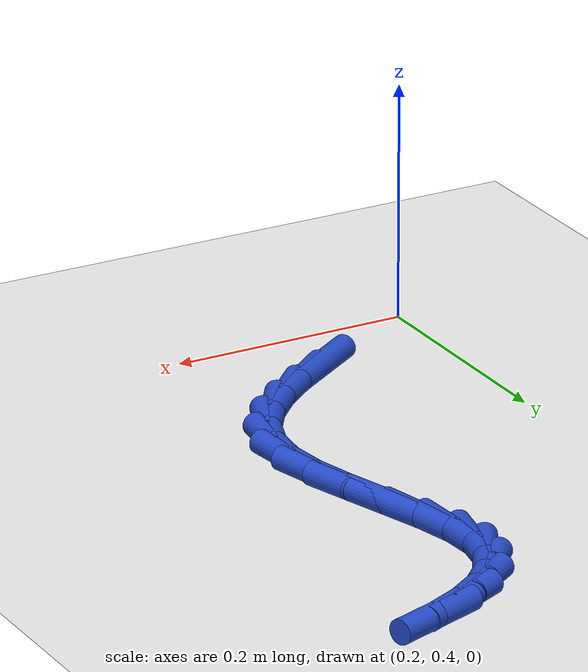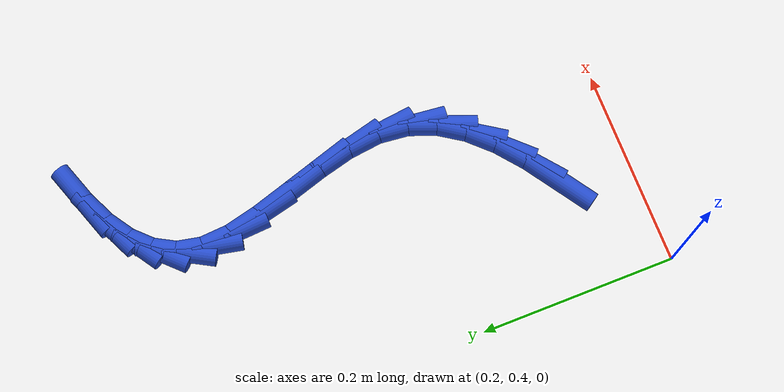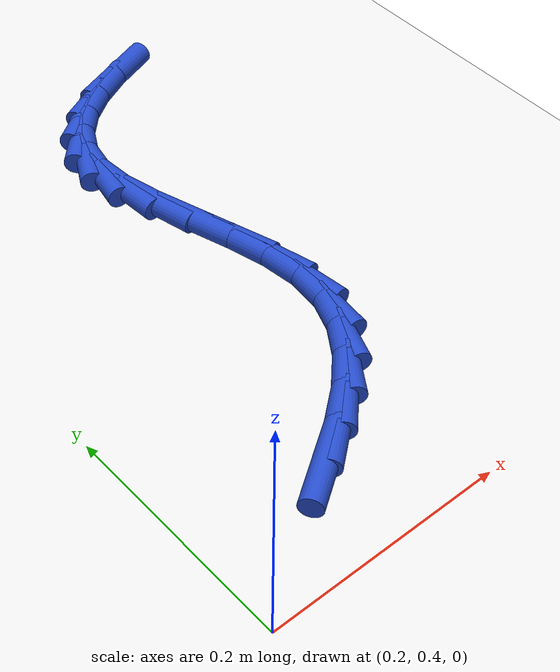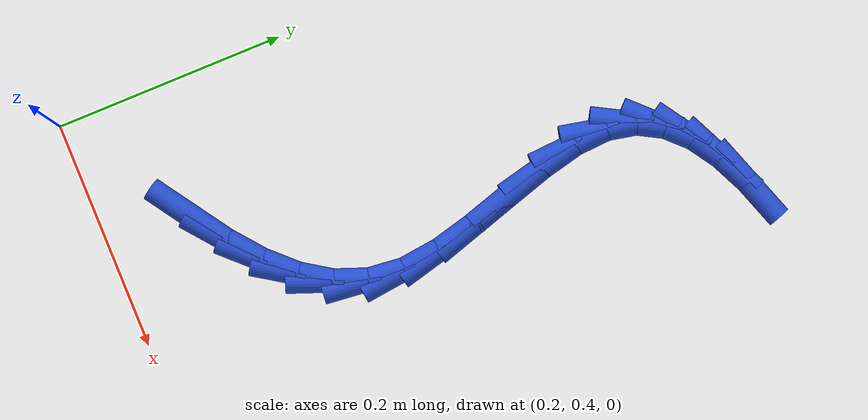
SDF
<sdf version="1.6">
 <world name="default">
  <model name="ground_plane">
   <static>1</static>
   <link name="link">
    <collision name="collision">
     <geometry><plane><normal>0 0 1</normal><size>100 100</size></plane></geometry>
     <surface><friction><ode><mu>100</mu><mu2>50</mu2></ode></friction></surface>
    </collision>
    <visual name="visual">
     <cast_shadows>0</cast_shadows>
     <geometry><plane><normal>0 0 1</normal><size>100 100</size></plane></geometry>
     <material>
      <script><uri>file://media/materials/scripts/gazebo.material</uri><name>Gazebo/WhiteGlow</name></script>
     </material>
    </visual>
   </link>
  </model>
  <model name="line">
   <link name="link_17">
    <pose>0.31219489335755607 0.474076107037543 0.01 0 1.57 0.589656181202302</pose>
    <collision name="collision">
     <geometry><cylinder><radius>0.01</radius><length>0.08</length></cylinder></geometry>
    </collision>
    <visual name="visual">
     <material>
      <script><name>Gazebo/Blue</name><uri>file://media/materials/scripts/gazebo.material</uri></script>
     </material>
     <geometry><cylinder><radius>0.01</radius><length>0.08</length></cylinder></geometry>
    </visual>
   </link>
   <link name="link_18">
    <pose>0.34253275027276175 0.49437388701969814 0.01 0 1.57 0.6777462787563344</pose>
    <collision name="collision">
     <geometry><cylinder><radius>0.01</radius><length>0.08</length></cylinder></geometry>
    </collision>
    <visual name="visual">
     <material>
      <script><name>Gazebo/Blue</name><uri>file://media/materials/scripts/gazebo.material</uri></script>
     </material>
     <geometry><cylinder><radius>0.01</radius><length>0.08</length></cylinder></geometry>
    </visual>
   </link>
   <link name="link_19">
    <pose>0.36932432437683166 0.5159395139711206 0.01 0 1.57 0.806125842627991</pose>
    <collision name="collision">
     <geometry><cylinder><radius>0.01</radius><length>0.08</length></cylinder></geometry>
    </collision>
    <visual name="visual">
     <material>
      <script><name>Gazebo/Blue</name><uri>file://media/materials/scripts/gazebo.material</uri></script>
     </material>
     <geometry><cylinder><radius>0.01</radius><length>0.08</length></cylinder></geometry>
    </visual>
   </link>
   <link name="link_20">
    <pose>0.39163447056413525 0.5391942496955151 0.01 0 1.57 0.9832441418283961</pose>
    <collision name="collision">
     <geometry><cylinder><radius>0.01</radius><length>0.08</length></cylinder></geometry>
    </collision>
    <visual name="visual">
     <material>
      <script><name>Gazebo/Blue</name><uri>file://media/materials/scripts/gazebo.material</uri></script>
     </material>
     <geometry><cylinder><radius>0.01</radius><length>0.08</length></cylinder></geometry>
    </visual>
   </link>
   <link name="link_21">
    <pose>0.4085280437290427 0.564559355996587 0.01 0 1.57 1.2094957342139134</pose>
    <collision name="collision">
     <geometry><cylinder><radius>0.01</radius><length>0.08</length></cylinder></geometry>
    </collision>
    <visual name="visual">
     <material>
      <script><name>Gazebo/Blue</name><uri>file://media/materials/scripts/gazebo.material</uri></script>
     </material>
     <geometry><cylinder><radius>0.01</radius><length>0.08</length></cylinder></geometry>
    </visual>
   </link>
   <link name="link_22">
    <pose>0.4190698987659235 0.5924560946780411 0.01 0 1.57 1.4655568719264143</pose>
    <collision name="collision">
     <geometry><cylinder><radius>0.01</radius><length>0.08</length></cylinder></geometry>
    </collision>
    <visual name="visual">
     <material>
      <script><name>Gazebo/Blue</name><uri>file://media/materials/scripts/gazebo.material</uri></script>
     </material>
     <geometry><cylinder><radius>0.01</radius><length>0.08</length></cylinder></geometry>
    </visual>
   </link>
   <link name="link_23">
    <pose>0.42232835905987604 0.6233040488498596 0.01 0 1.57 -1.453269252564613</pose>
    <collision name="collision">
     <geometry><cylinder><radius>0.01</radius><length>0.08</length></cylinder></geometry>
    </collision>
    <visual name="visual">
     <material>
      <script><name>Gazebo/Blue</name><uri>file://media/materials/scripts/gazebo.material</uri></script>
     </material>
     <geometry><cylinder><radius>0.01</radius><length>0.08</length></cylinder></geometry>
    </visual>
   </link>
   <link name="link_24">
    <pose>0.4183436487180534 0.6570524173049758 0.01 0 1.57 -1.3253362792650358</pose>
    <collision name="collision">
     <geometry><cylinder><radius>0.01</radius><length>0.08</length></cylinder></geometry>
    </collision>
    <visual name="visual">
     <material>
      <script><name>Gazebo/Blue</name><uri>file://media/materials/scripts/gazebo.material</uri></script>
     </material>
     <geometry><cylinder><radius>0.01</radius><length>0.08</length></cylinder></geometry>
    </visual>
   </link>
   <link name="link_25">
    <pose>0.4094540579785947 0.6925381717919168 0.01 0 1.57 -1.2703103494876535</pose>
    <collision name="collision">
     <geometry><cylinder><radius>0.01</radius><length>0.08</length></cylinder></geometry>
    </collision>
    <visual name="visual">
     <material>
      <script><name>Gazebo/Blue</name><uri>file://media/materials/scripts/gazebo.material</uri></script>
     </material>
     <geometry><cylinder><radius>0.01</radius><length>0.08</length></cylinder></geometry>
    </visual>
   </link>
   <link name="link_26">
    <pose>0.39832995634646606 0.7284375630353555 0.01 0 1.57 -1.2743269905875352</pose>
    <collision name="collision">
     <geometry><cylinder><radius>0.01</radius><length>0.08</length></cylinder></geometry>
    </collision>
    <visual name="visual">
     <material>
      <script><name>Gazebo/Blue</name><uri>file://media/materials/scripts/gazebo.material</uri></script>
     </material>
     <geometry><cylinder><radius>0.01</radius><length>0.08</length></cylinder></geometry>
    </visual>
   </link>
   <link name="link_27">
    <pose>0.38764171332663366 0.7634268417599653 0.01 0 1.57 -1.3433288088316944</pose>
    <collision name="collision">
     <geometry><cylinder><radius>0.01</radius><length>0.08</length></cylinder></geometry>
    </collision>
    <visual name="visual">
     <material>
      <script><name>Gazebo/Blue</name><uri>file://media/materials/scripts/gazebo.material</uri></script>
     </material>
     <geometry><cylinder><radius>0.01</radius><length>0.08</length></cylinder></geometry>
    </visual>
   </link>
   <link name="link_28">
    <pose>0.38005969842406373 0.7961822586904197 0.01 0 1.57 -1.508160542037202</pose>
    <collision name="collision">
     <geometry><cylinder><radius>0.01</radius><length>0.08</length></cylinder></geometry>
    </collision>
    <visual name="visual">
     <material>
      <script><name>Gazebo/Blue</name><uri>file://media/materials/scripts/gazebo.material</uri></script>
     </material>
     <geometry><cylinder><radius>0.01</radius><length>0.08</length></cylinder></geometry>
    </visual>
   </link>
   <link name="link_29">
    <pose>0.378227563490017 0.8253946066307822 0.01 0 1.57 1.3636173697189506</pose>
    <collision name="collision">
     <geometry><cylinder><radius>0.01</radius><length>0.08</length></cylinder></geometry>
    </collision>
    <visual name="visual">
     <material>
      <script><name>Gazebo/Blue</name><uri>file://media/materials/scripts/gazebo.material</uri></script>
     </material>
     <geometry><cylinder><radius>0.01</radius><length>0.08</length></cylinder></geometry>
    </visual>
   </link>
   <link name="link_30">
    <pose>0.38349586716752904 0.8504584925860481 0.01 0 1.57 1.0624609753797698</pose>
    <collision name="collision">
     <geometry><cylinder><radius>0.01</radius><length>0.08</length></cylinder></geometry>
    </collision>
    <visual name="visual">
     <material>
      <script><name>Gazebo/Blue</name><uri>file://media/materials/scripts/gazebo.material</uri></script>
     </material>
     <geometry><cylinder><radius>0.01</radius><length>0.08</length></cylinder></geometry>
    </visual>
   </link>
   <link name="link_31">
    <pose>0.39537129361239426 0.8717721210131194 0.01 0 1.57 0.7907053357896994</pose>
    <collision name="collision">
     <geometry><cylinder><radius>0.01</radius><length>0.08</length></cylinder></geometry>
    </collision>
    <visual name="visual">
     <material>
      <script><name>Gazebo/Blue</name><uri>file://media/materials/scripts/gazebo.material</uri></script>
     </material>
     <geometry><cylinder><radius>0.01</radius><length>0.08</length></cylinder></geometry>
    </visual>
   </link>
   <link name="link_32">
    <pose>0.4132192868463547 0.8898105715790193 0.01 0 1.57 0.5814354681504732</pose>
    <collision name="collision">
     <geometry><cylinder><radius>0.01</radius><length>0.08</length></cylinder></geometry>
    </collision>
    <visual name="visual">
     <material>
      <script><name>Gazebo/Blue</name><uri>file://media/materials/scripts/gazebo.material</uri></script>
     </material>
     <geometry><cylinder><radius>0.01</radius><length>0.08</length></cylinder></geometry>
    </visual>
   </link>
   <link name="link_33">
    <pose>0.4364052908911517 0.9050489239507703 0.01 0 1.57 0.4336271711486278</pose>
    <collision name="collision">
     <geometry><cylinder><radius>0.01</radius><length>0.08</length></cylinder></geometry>
    </collision>
    <visual name="visual">
     <material>
      <script><name>Gazebo/Blue</name><uri>file://media/materials/scripts/gazebo.material</uri></script>
     </material>
     <geometry><cylinder><radius>0.01</radius><length>0.08</length></cylinder></geometry>
    </visual>
   </link>
   <link name="link_34">
    <pose>0.46429474976852714 0.917962257795396 0.01 0 1.57 0.33326907307639436</pose>
    <collision name="collision">
     <geometry><cylinder><radius>0.01</radius><length>0.08</length></cylinder></geometry>
    </collision>
    <visual name="visual">
     <material>
      <script><name>Gazebo/Blue</name><uri>file://media/materials/scripts/gazebo.material</uri></script>
     </material>
     <geometry><cylinder><radius>0.01</radius><length>0.08</length></cylinder></geometry>
    </visual>
   </link>
  </model>
 </world>
</sdf>
